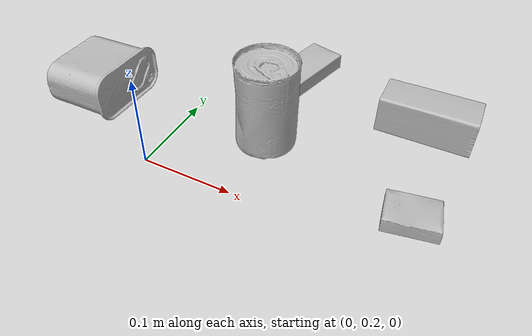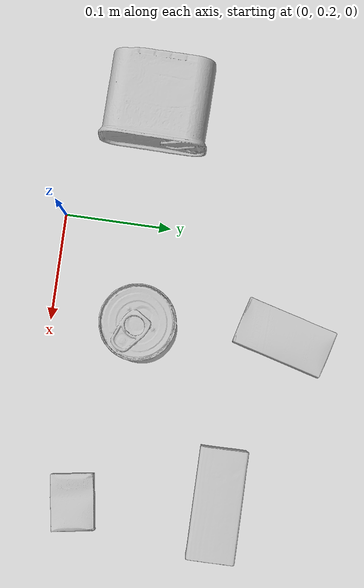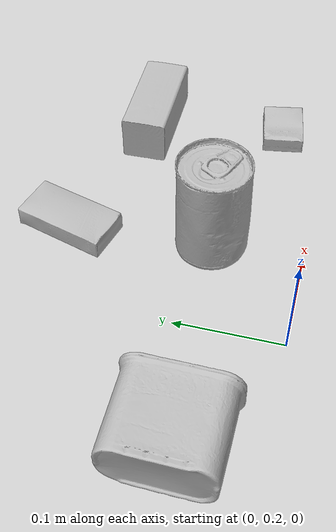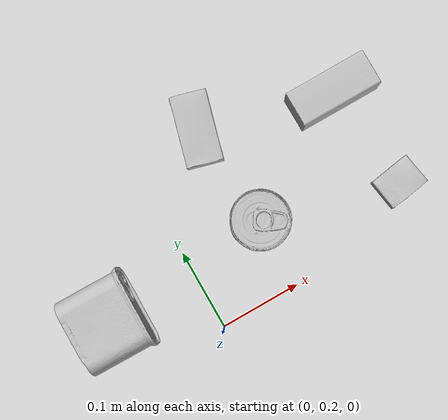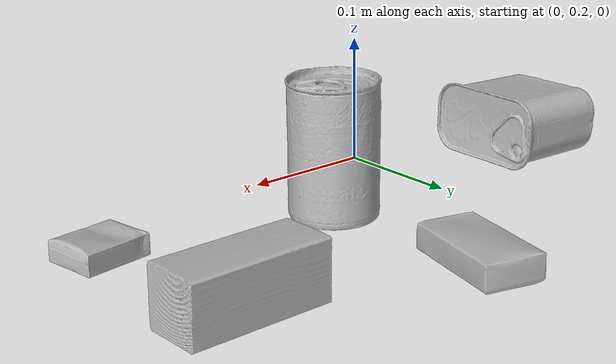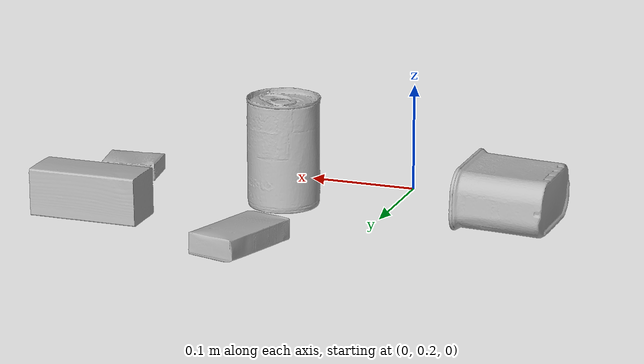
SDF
<sdf version="1.4">
  <world name="default">
    <light name="light1" type="point">
      <pose>0 0 1 0 0 0</pose>
      <diffuse>3 3 3 1</diffuse>
      <specular>3 3 3 1</specular>
    </light>
    <light name="light2" type="point">
      <pose>0 0.5 2 0 0 0</pose>
      <diffuse>1 1 1 1</diffuse>
      <specular>1 1 1 1</specular>
    </light>
    <light name="light3" type="point">
      <pose>0 0.5 2 0 0 0</pose>
      <diffuse>3 3 3 1</diffuse>
      <specular>3 3 3 1</specular>
    </light>
    <scene>
      <ambient>0.7 0.7 0.7</ambient>
    </scene>
    <model name="box1">
      <link name="link_box1">
        <collision name="default">
          <geometry>
            <mesh>
              <uri>model://sugar_box/collision_meshes/collision.obj</uri>
              <scale>0.5 0.5 0.5</scale>
            </mesh>
          </geometry>
          <surface>
            <friction>
              <ode>
                <mu>0.5</mu>
                <mu2>0.5</mu2>
              </ode>
            </friction>
          <contact>
        <ode>
            <max_vel>0</max_vel>
            <min_depth>0.0001</min_depth>
            <kp>1e8</kp>
        </ode>
    </contact></surface>
        </collision>
        <visual name="default">
          <geometry>
            <mesh>
              <uri>model://sugar_box/visual_meshes/visual.dae</uri>
              <scale>0.5 0.5 0.5</scale>
            </mesh>
          </geometry>
        </visual>
        <inertial>
          <mass>0.048160675913095474</mass>
          <pose>0.0005171863595023751 1.924554817378521e-05 -0.00018182402709499002 -0.0004046258638373534 0.0010506635215919557 0.0026153787891515894</pose>
          <inertia>
            <ixx>1.0031835e-05</ixx>
            <iyy>3.2424945e-05</iyy>
            <izz>3.8816543e-05</izz>
            <ixy>0</ixy>
            <ixz>0</ixz>
            <iyz>0</iyz>
          </inertia>
        </inertial>
      </link>
      <pose>0.08772288262844086 0.41957804560661316 0.011399300768971443 0.0007749628222805999 -0.02343317030647216 1.2998139072455364</pose>
    </model>
    <model name="box2">
      <link name="link_box2">
        <collision name="default">
          <geometry>
            <mesh>
              <uri>model://cracker_box/collision_meshes/collision.obj</uri>
              <scale>0.25 0.25 0.25</scale>
            </mesh>
          </geometry>
          <surface>
            <friction>
              <ode>
                <mu>0.5</mu>
                <mu2>0.5</mu2>
              </ode>
            </friction>
          <contact>
        <ode>
            <max_vel>0</max_vel>
            <min_depth>0.0001</min_depth>
            <kp>1e8</kp>
        </ode>
    </contact></surface>
        </collision>
        <visual name="default">
          <geometry>
            <mesh>
              <uri>model://cracker_box/visual_meshes/visual.dae</uri>
              <scale>0.25 0.25 0.25</scale>
            </mesh>
          </geometry>
        </visual>
        <inertial>
          <mass>0.047952666878700256</mass>
          <pose>0.00023660370789002627 6.358561950037256e-05 -0.0004257383698131889 -0.0003162075404896153 -0.011106488669099107 0.002546795234185617</pose>
          <inertia>
            <ixx>7.623136e-06</ixx>
            <iyy>1.2587296e-05</iyy>
            <izz>1.7963224e-05</izz>
            <ixy>0</ixy>
            <ixz>0</ixz>
            <iyz>0</iyz>
          </inertia>
        </inertial>
      </link>
      <pose>0.26575928926467896 0.24570615589618683 0.009120448492467403 -0.011788104794394828 -0.0073671629462324405 0.15806387356426452</pose>
    </model>
    <model name="box3">
      <link name="link_box3">
        <collision name="default">
          <geometry>
            <mesh>
              <uri>model://wood_block/collision_meshes/collision.obj</uri>
              <scale>0.5 0.5 0.5</scale>
            </mesh>
          </geometry>
          <surface>
            <friction>
              <ode>
                <mu>0.5</mu>
                <mu2>0.5</mu2>
              </ode>
            </friction>
          <contact>
        <ode>
            <max_vel>0</max_vel>
            <min_depth>0.0001</min_depth>
            <kp>1e8</kp>
        </ode>
    </contact></surface>
        </collision>
        <visual name="default">
          <geometry>
            <mesh>
              <uri>model://wood_block/visual_meshes/visual.dae</uri>
              <scale>0.5 0.5 0.5</scale>
            </mesh>
          </geometry>
        </visual>
        <inertial>
          <mass>0.27162742614746094</mass>
          <pose>-2.9066577553749084e-06 -0.000285404734313488 0.00013204291462898254 -0.05220780121661256 -0.005192696561201931 -0.006861379819720353</pose>
          <inertia>
            <ixx>9.086965e-05</ixx>
            <iyy>0.00028705722</iyy>
            <izz>0.0002859835</izz>
            <ixy>0</ixy>
            <ixz>0</ixz>
            <iyz>0</iyz>
          </inertia>
        </inertial>
      </link>
      <pose>0.24821436405181885 0.3779672682285309 0.02262927033007145 -0.00520857779952538 0.005718710387850201 0.004871234936148302</pose>
    </model>
    <model name="can1">
      <link name="link_can1">
        <collision name="default">
          <geometry>
            <mesh>
              <uri>model://tomato_soup_can/collision_meshes/collision.obj</uri>
              <scale>1.0 1.0 1.0</scale>
            </mesh>
          </geometry>
          <surface>
            <friction>
              <ode>
                <mu>0.5</mu>
                <mu2>0.5</mu2>
              </ode>
            </friction>
          <contact>
        <ode>
            <max_vel>0</max_vel>
            <min_depth>0.0001</min_depth>
            <kp>1e8</kp>
        </ode>
    </contact></surface>
        </collision>
        <visual name="default">
          <geometry>
            <mesh>
              <uri>model://tomato_soup_can/visual_meshes/visual.dae</uri>
              <scale>1.0 1.0 1.0</scale>
            </mesh>
          </geometry>
        </visual>
        <inertial>
          <mass>0.33680883049964905</mass>
          <pose>0.0001265227037947625 0.0001080552683561109 -0.0017973986687138677 0.007020065933643549 0.0004229964102555597 -0.009903579397299064</pose>
          <inertia>
            <ixx>0.00036928226</ixx>
            <iyy>0.0003671481</iyy>
            <izz>0.00019139561</izz>
            <ixy>0</ixy>
            <ixz>0</ixz>
            <iyz>0</iyz>
          </inertia>
        </inertial>
      </link>
      <pose>0.09700755029916763 0.2861742675304413 0.05127402022480965 -4.957323981011454e-07 -9.235450203631607e-07 0.7213285900735905</pose>
    </model>
    <model name="can2">
      <link name="link_can2">
        <collision name="default">
          <geometry>
            <mesh>
              <uri>model://potted_meat_can/collision_meshes/collision.obj</uri>
              <scale>1.0 1.0 1.0</scale>
            </mesh>
          </geometry>
          <surface>
            <friction>
              <ode>
                <mu>0.5</mu>
                <mu2>0.5</mu2>
              </ode>
            </friction>
          <contact>
        <ode>
            <max_vel>0</max_vel>
            <min_depth>0.0001</min_depth>
            <kp>1e8</kp>
        </ode>
    </contact></surface>
        </collision>
        <visual name="default">
          <geometry>
            <mesh>
              <uri>model://potted_meat_can/visual_meshes/visual.dae</uri>
              <scale>1.0 1.0 1.0</scale>
            </mesh>
          </geometry>
        </visual>
        <inertial>
          <mass>0.5009446144104004</mass>
          <pose>0.00022888141393195838 -5.9891164710279554e-05 -0.0006367440801113844 -0.028093347044227477 -0.007232596108467961 0.015406262357490775</pose>
          <inertia>
            <ixx>0.0006444129</ixx>
            <iyy>0.0003915297</iyy>
            <izz>0.00046868768</izz>
            <ixy>0</ixy>
            <ixz>0</ixz>
            <iyz>0</iyz>
          </inertia>
        </inertial>
      </link>
      <pose>-0.11416902393102646 0.27367496490478516 0.027471227571368217 0.27602660585415006 -1.5334107976539766 2.849012398173472</pose>
    </model>
  <physics type="ode">
      <max_contacts>50</max_contacts>
      <ode>
        <solver>
          <type>quick</type>
          <iters>75</iters>
        </solver>
        <constraints>
          <contact_max_correcting_vel>0</contact_max_correcting_vel>
          <contact_surface_layer>0</contact_surface_layer>
        </constraints>
      </ode>
    </physics></world>
</sdf>
